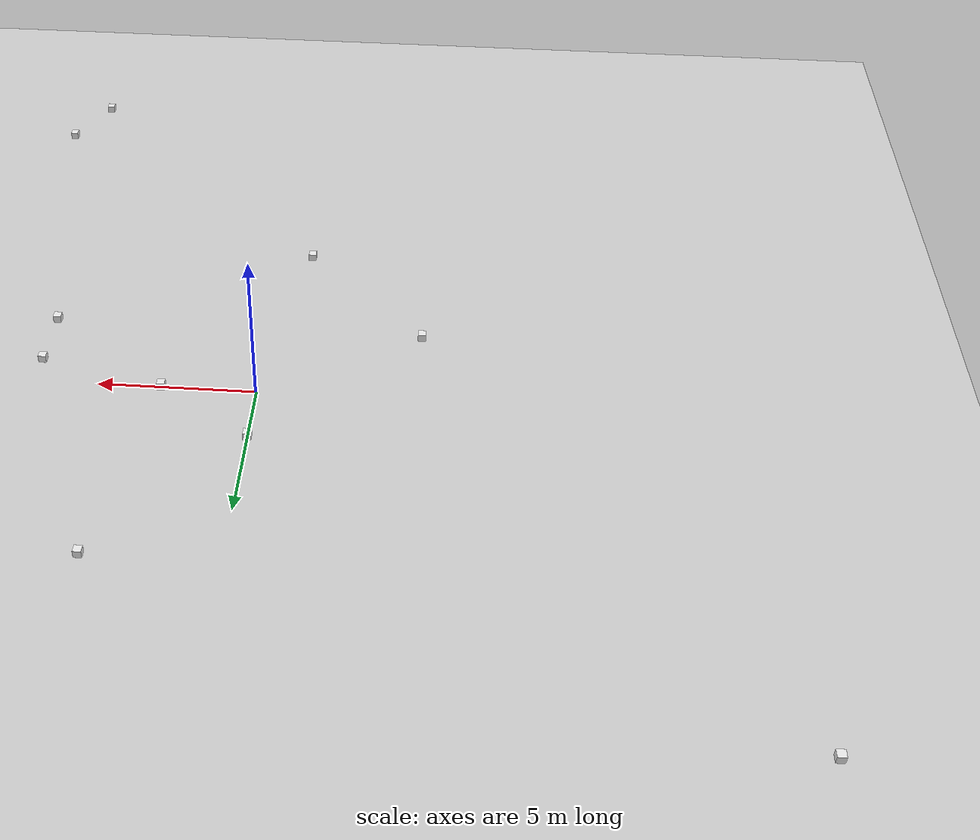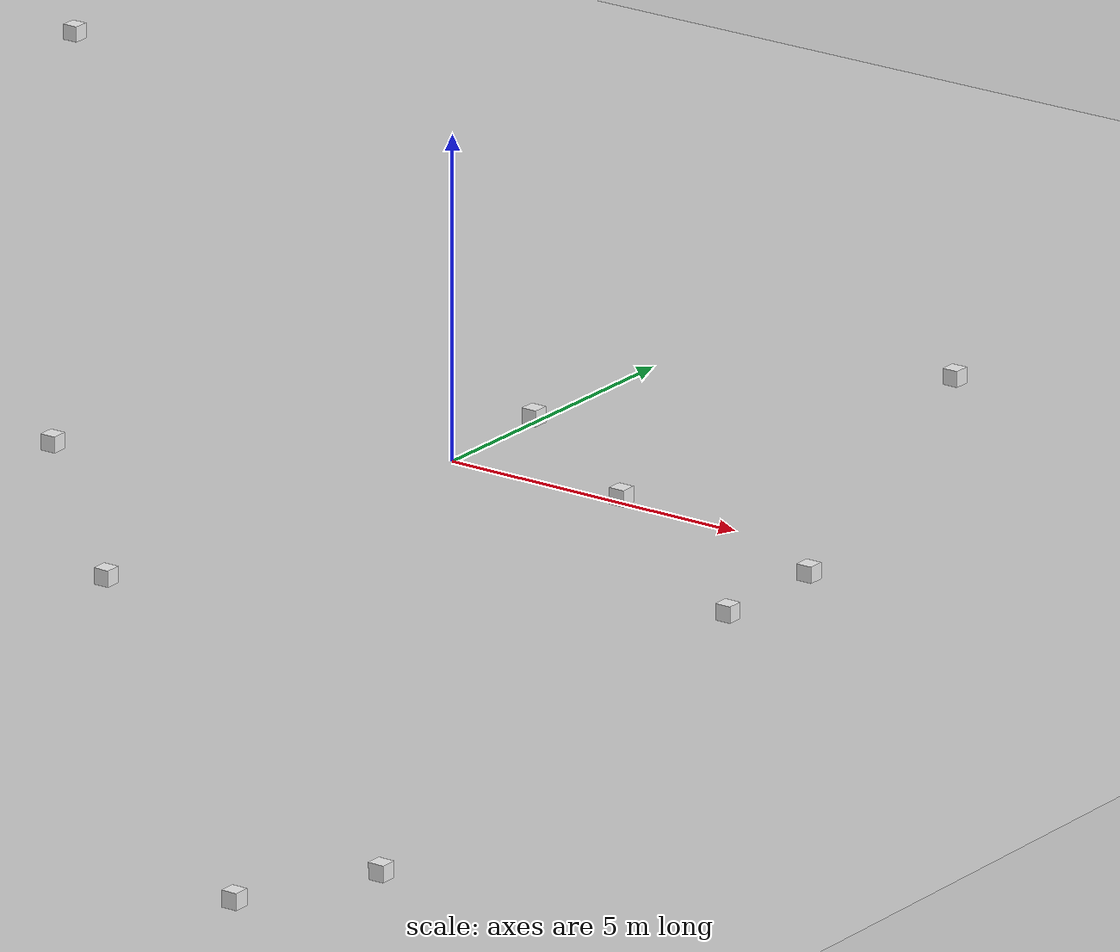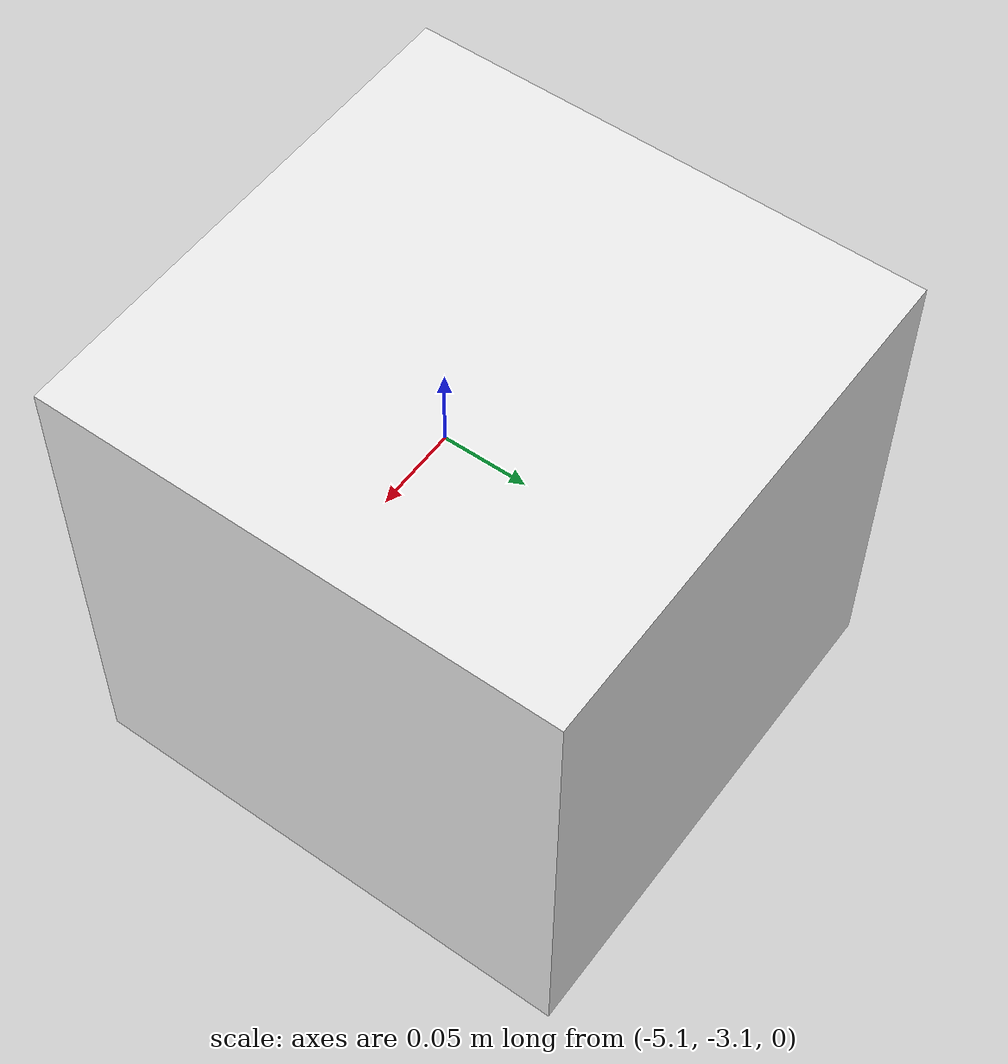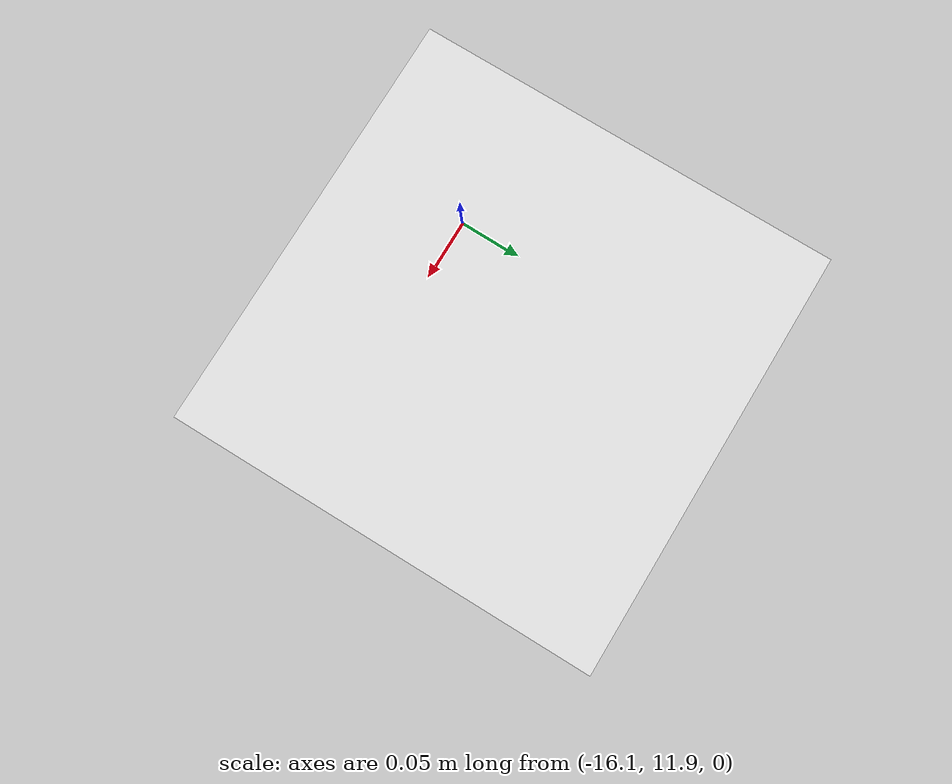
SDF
<sdf version="1.4">
 <world name="default">
  <light name="sun" type="directional">
   <pose>0 0 10 0 -0 0</pose>
   <diffuse>0.8 0.8 0.8 1</diffuse>
   <pose>0 0 10 0 -0 0</pose>
   <specular>0.2 0.2 0.2 1</specular>
   <attenuation>
    <range>1000</range>
    <constant>0.9</constant>
    <linear>0.01</linear>
    <quadratic>0.001</quadratic>
   </attenuation>
   <direction>-0.5 0.1 -0.9</direction>
  </light>
  <model name="ground_plane">
   <static>1</static>
   <link name="link">
    <collision name="collision">
     <geometry><plane><normal>0 0 1</normal><size>100 100</size></plane></geometry>
     <surface><friction><ode><mu>100</mu><mu2>50</mu2></ode></friction></surface>
    </collision>
    <visual name="visual">
     <cast_shadows>0</cast_shadows>
     <geometry><plane><normal>0 0 1</normal><size>100 100</size></plane></geometry>
     <material>
      <script><uri>file://media/materials/scripts/gazebo.material</uri><name>Gazebo/Grey</name></script>
     </material>
    </visual>
    <velocity_decay><linear>0</linear><angular>0</angular></velocity_decay>
   </link>
  </model>
  <model name="box_obstacle_1">
   <pose>4 7 0.125 0 0 0</pose>
   <static>true</static>
   <link name="link">
    <collision name="collision"><geometry><box><size>0.25 0.25 0.25</size></box></geometry></collision>
    <visual name="visual">
     <geometry><box><size>0.25 0.25 0.25</size></box></geometry>
     <material>
      <script><uri>file://media/materials/scripts/gazebo.material</uri><name>Gazebo/White</name></script>
     </material>
    </visual>
   </link>
  </model>
  <model name="box_obstacle_2">
   <pose>3 0 0.125 0 0 0</pose>
   <static>true</static>
   <link name="link">
    <collision name="collision"><geometry><box><size>0.25 0.25 0.25</size></box></geometry></collision>
    <visual name="visual">
     <geometry><box><size>0.25 0.25 0.25</size></box></geometry>
     <material>
      <script><uri>file://media/materials/scripts/gazebo.material</uri><name>Gazebo/White</name></script>
     </material>
    </visual>
   </link>
  </model>
  <model name="box_obstacle_3">
   <pose>7 -1 0.125 0 0 0</pose>
   <static>true</static>
   <link name="link">
    <collision name="collision"><geometry><box><size>0.25 0.25 0.25</size></box></geometry></collision>
    <visual name="visual">
     <geometry><box><size>0.25 0.25 0.25</size></box></geometry>
     <material>
      <script><uri>file://media/materials/scripts/gazebo.material</uri><name>Gazebo/White</name></script>
     </material>
    </visual>
   </link>
  </model>
  <model name="box_obstacle_4">
   <pose>9 -14 0.125 0 0 0</pose>
   <static>true</static>
   <link name="link">
    <collision name="collision"><geometry><box><size>0.25 0.25 0.25</size></box></geometry></collision>
    <visual name="visual">
     <geometry><box><size>0.25 0.25 0.25</size></box></geometry>
     <material>
      <script><uri>file://media/materials/scripts/gazebo.material</uri><name>Gazebo/White</name></script>
     </material>
    </visual>
   </link>
  </model>
  <model name="box_obstacle_5">
   <pose>8 -16 0.125 0 0 0</pose>
   <static>true</static>
   <link name="link">
    <collision name="collision"><geometry><box><size>0.25 0.25 0.25</size></box></geometry></collision>
    <visual name="visual">
     <geometry><box><size>0.25 0.25 0.25</size></box></geometry>
     <material>
      <script><uri>file://media/materials/scripts/gazebo.material</uri><name>Gazebo/White</name></script>
     </material>
    </visual>
   </link>
  </model>
  <model name="box_obstacle_6">
   <pose>0 2 0.125 0 0 0</pose>
   <static>true</static>
   <link name="link">
    <collision name="collision"><geometry><box><size>0.25 0.25 0.25</size></box></geometry></collision>
    <visual name="visual">
     <geometry><box><size>0.25 0.25 0.25</size></box></geometry>
     <material>
      <script><uri>file://media/materials/scripts/gazebo.material</uri><name>Gazebo/White</name></script>
     </material>
    </visual>
   </link>
  </model>
  <model name="box_obstacle_7">
   <pose>-1 -7 0.125 0 0 0</pose>
   <static>true</static>
   <link name="link">
    <collision name="collision"><geometry><box><size>0.25 0.25 0.25</size></box></geometry></collision>
    <visual name="visual">
     <geometry><box><size>0.25 0.25 0.25</size></box></geometry>
     <material>
      <script><uri>file://media/materials/scripts/gazebo.material</uri><name>Gazebo/White</name></script>
     </material>
    </visual>
   </link>
  </model>
  <model name="box_obstacle_8">
   <pose>-16 12 0.125 0 0 0</pose>
   <static>true</static>
   <link name="link">
    <collision name="collision"><geometry><box><size>0.25 0.25 0.25</size></box></geometry></collision>
    <visual name="visual">
     <geometry><box><size>0.25 0.25 0.25</size></box></geometry>
     <material>
      <script><uri>file://media/materials/scripts/gazebo.material</uri><name>Gazebo/White</name></script>
     </material>
    </visual>
   </link>
  </model>
  <model name="box_obstacle_9">
   <pose>7 -3 0.125 0 0 0</pose>
   <static>true</static>
   <link name="link">
    <collision name="collision"><geometry><box><size>0.25 0.25 0.25</size></box></geometry></collision>
    <visual name="visual">
     <geometry><box><size>0.25 0.25 0.25</size></box></geometry>
     <material>
      <script><uri>file://media/materials/scripts/gazebo.material</uri><name>Gazebo/White</name></script>
     </material>
    </visual>
   </link>
  </model>
  <model name="box_obstacle_10">
   <pose>-5 -3 0.125 0 0 0</pose>
   <static>true</static>
   <link name="link">
    <collision name="collision"><geometry><box><size>0.25 0.25 0.25</size></box></geometry></collision>
    <visual name="visual">
     <geometry><box><size>0.25 0.25 0.25</size></box></geometry>
     <material>
      <script><uri>file://media/materials/scripts/gazebo.material</uri><name>Gazebo/White</name></script>
     </material>
    </visual>
   </link>
  </model>
  <physics type="ode">
   <max_step_size>0.001</max_step_size>
   <real_time_factor>1</real_time_factor>
   <real_time_update_rate>1000</real_time_update_rate>
   <gravity>0 0 -9.8</gravity>
  </physics>
  <scene><ambient>0.4 0.4 0.4 1</ambient><background>0.7 0.7 0.7 1</background><shadows>1</shadows></scene>
  <spherical_coordinates>
   <surface_model>EARTH_WGS84</surface_model>
   <latitude_deg>0</latitude_deg>
   <longitude_deg>0</longitude_deg>
   <elevation>0</elevation>
   <heading_deg>0</heading_deg>
  </spherical_coordinates>
 </world>
</sdf>
